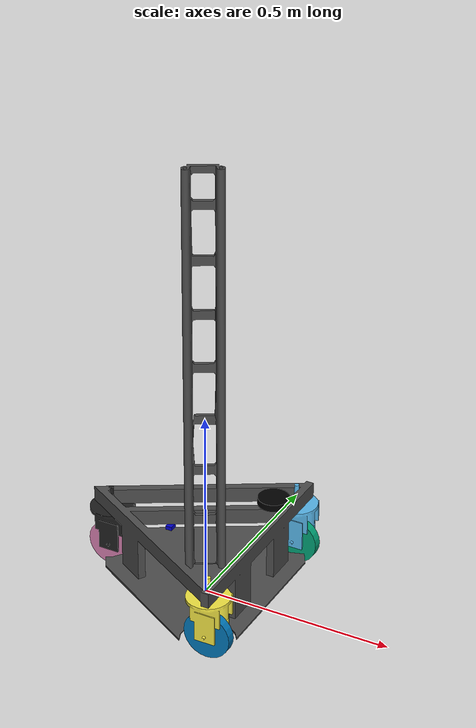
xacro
<?xml version="1.0"?>
<robot name="bobik" xmlns:xacro="http://ros.org/wiki/xacro">
    <xacro:include filename="$(find bobik_robot)/urdf/common_properties.xacro" />
    <xacro:include filename="$(find bobik_robot)/urdf/materials.xacro" />
    <xacro:include filename="$(find bobik_robot)/urdf/bobik.gazebo.xacro"/>

    <xacro:property name="wheel_diameter" value="0.123" />

    <!-- root_link is a workaround for base_link to have an inertia mass -->
    <link name="base_link">
        <visual>
            <origin xyz="0 0 0" rpy="0 0 0" />
            <geometry>
                <mesh filename="file:///home/honza/ros2_foxy/src/bobik_robot/meshes/base_link.dae" />
            </geometry>
        </visual>
        <collision>
            <origin xyz="0 0 0" rpy="0 0 0" />
            <geometry>
                <mesh filename="file:///home/honza/ros2_foxy/src/bobik_robot/meshes/base_link_collision.dae" />
            </geometry>
        </collision>
    </link>

    <xacro:macro name="caster" params="prefix joint_origin">
        <joint name="${prefix}_caster_rotation_joint" type="revolute">
            <parent link="base_link" />
            <child link="${prefix}_caster_rotation_link" />
            <origin xyz="${joint_origin}" rpy="0 0 ${0*M_PI/180}" />
            <axis xyz="0 0 1" />
            <limit lower="${-M_PI/2}" upper="${M_PI/2}" effort="20" velocity="${M_PI}" />
        </joint>

        <link name="${prefix}_caster_rotation_link">
            <visual>
                <origin xyz="0 0 0" rpy="0 0 0" />
                <geometry>
                    <mesh filename="package://bobik_robot/meshes/caster_rotation_link.dae" />
                </geometry>
            </visual>
            <collision>
                <origin xyz="0 0 -0.06" rpy="0 0 0" />
                <geometry>
                    <box size="0.10 0.11 0.12" />
                </geometry>
            </collision>
            <inertial>
                <origin xyz="0 0 -0.1" rpy="0 0 0" />
                <mass value="0.5" />
                <inertia ixx="2.2124416e-03" ixy="-1.2294101e-05" ixz="3.4938785e-05" iyy="2.1193702e-03" iyz="-5.0120904e-06" izz="2.0064271e-03" />
            </inertial>
        </link>

        <joint name="${prefix}_caster_wheel_joint" type="continuous">
            <parent link="${prefix}_caster_rotation_link" />
            <child link="${prefix}_caster_wheel_link" />
            <origin xyz="0 0 -0.110" rpy="0 0 0" />
            <axis xyz="0 1 0" />
            <limit effort="30" velocity="${M_PI*2}" />
        </joint>

        <link name="${prefix}_caster_wheel_link">
            <visual>
                <origin xyz="0 0 0" rpy="${M_PI/2} 0 0" />
                <geometry>
                    <cylinder length="0.024" radius="${wheel_diameter/2}" />
                </geometry>
                <material name="mat_wheel"/>
            </visual>
            <collision>
                <origin xyz="0 0 0" rpy="0 0 0" />
                <geometry>
                    <box size="${wheel_diameter} 0.024 ${wheel_diameter}" />
                </geometry>
            </collision>
            <inertial>
                <origin xyz="0 0 0" rpy="0 0 0" />
                <mass value="0.15" />
                <inertia ixx="2.2124416e-03" ixy="-1.2294101e-05" ixz="3.4938785e-05" iyy="2.1193702e-03" iyz="-5.0120904e-06" izz="2.0064271e-03" />
            </inertial>
        </link>
    </xacro:macro>
    <xacro:caster prefix="fl" joint_origin="0.134 0.23 0.173" />
    <xacro:caster prefix="fr" joint_origin="0.134 -0.23 0.173" />
    <xacro:caster prefix="r"  joint_origin="-0.270 0.0 0.173" />

    <joint name="lidar_joint" type="fixed">
        <parent link="base_link" />
        <child link="lidar_link" />
        <origin xyz="0.12 0.13 ${0.045/2+0.21}" rpy="0 0 0" />
    </joint>
    <link name="lidar_link">
        <visual>
            <origin xyz="0 0 0" rpy="0 0 0" />
            <geometry>
                <cylinder length="0.018" radius="0.04" />
            </geometry>
            <material name="black"/>
        </visual>
        <collision>
            <origin xyz="0 0 0" rpy="0 0 0" />
            <geometry>
                <box size="0.08 0.08 0.045" />
            </geometry>
        </collision>
        <inertial>
            <origin xyz="0 0 0" rpy="0 0 0" />
            <mass value="0.2" />
            <inertia ixx="2.2124416e-04" ixy="-1.2294101e-06" ixz="3.4938785e-06" iyy="2.1193702e-04" iyz="-5.0120904e-05" izz="2.0064271e-04" />
        </inertial>
    </link>

    <joint name="imu_joint" type="fixed">
        <parent link="base_link" />
        <child link="imu_link" />
        <origin xyz="-0.1 0.0 0.16" rpy="0 0 0" />
    </joint>
    <link name="imu_link">
        <visual>
            <origin xyz="0 0 0" rpy="0 0 0" />
            <geometry>
                <box size="0.016 0.02 0.01" />
            </geometry>
            <material name="blue"/>
        </visual>
        <collision>
            <origin xyz="0 0 0" rpy="0 0 0" />
            <geometry>
                <box size="0.016 0.02 0.01" />
            </geometry>
        </collision>
        <inertial>
            <origin xyz="0 0 0" rpy="0 0 0" />
            <mass value="0.01" />
            <inertia ixx="2.2124416e-04" ixy="-1.2294101e-06" ixz="3.4938785e-06" iyy="2.1193702e-04" iyz="-5.0120904e-05" izz="2.0064271e-04" />
        </inertial>
    </link>

</robot>

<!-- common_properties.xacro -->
<robot name="xacro_properties" xmlns:xacro="http://ros.org/wiki/xacro">

  <xacro:property name="M_PI" value="3.1415926535897931" />

</robot>

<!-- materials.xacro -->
<robot name="xacro_properties" xmlns:xacro="http://ros.org/wiki/xacro">

    <material name="mat_wheel">
        <texture filename="package://bobik_robot/meshes/wheel.png" />
    </material>

    <!-- Init colour -->
    <material name="black">
        <color rgba="0.0 0.0 0.0 1.0" />
    </material>

    <material name="dark">
        <color rgba="0.3 0.3 0.3 1.0" />
    </material>
    <material name="light_black">
        <color rgba="0.4 0.4 0.4 1.0" />
    </material>

    <material name="blue">
        <color rgba="0.0 0.0 0.8 1.0" />
    </material>

    <material name="green">
        <color rgba="0.0 0.8 0.0 1.0" />
    </material>

    <material name="grey">
        <color rgba="0.5 0.5 0.5 1.0" />
    </material>

    <material name="orange">
        <color rgba="${255/255} ${108/255} ${10/255} 1.0" />
    </material>

    <material name="brown">
        <color rgba="${222/255} ${207/255} ${195/255} 1.0" />
    </material>

    <material name="red">
        <color rgba="0.8 0.0 0.0 1.0" />
    </material>

    <material name="white">
        <color rgba="1.0 1.0 1.0 1.0" />
    </material>

</robot>
